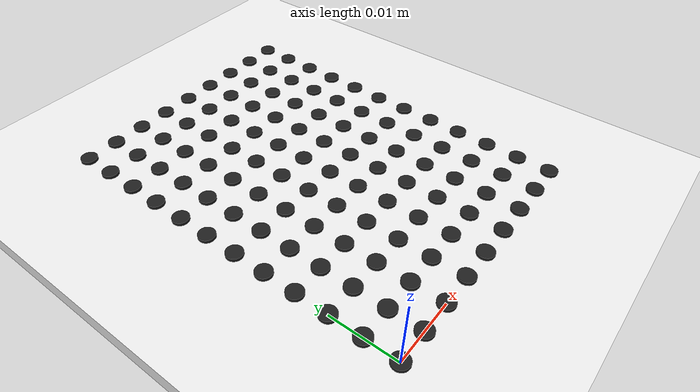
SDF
<?xml version="1.0"?>
<sdf version="1.4">
	<model name="dots_board_small">
		<pose>0 0 0 0 0 0</pose>
		<static>false</static>
		<link name="body">
			<visual name="dot_1_1">
				<pose>0 0 0.00025 0 0 0</pose>
				<geometry>
					<cylinder>
						<radius>0.00125</radius>
						<length>0.0005</length>
					</cylinder>
				</geometry>
				<material>
					<script>
						<uri>file://media/materials/scripts/gazebo.material</uri>
						<name>Gazebo/Black</name>
					</script>
				</material>
			</visual>
			<visual name="dot_1_2">
				<pose>0 0.005 0.00025 0 0 0</pose>
				<geometry>
					<cylinder>
						<radius>0.00125</radius>
						<length>0.0005</length>
					</cylinder>
				</geometry>
				<material>
					<script>
						<uri>file://media/materials/scripts/gazebo.material</uri>
						<name>Gazebo/Black</name>
					</script>
				</material>
			</visual>
			<visual name="dot_1_3">
				<pose>0 0.01 0.00025 0 0 0</pose>
				<geometry>
					<cylinder>
						<radius>0.00125</radius>
						<length>0.0005</length>
					</cylinder>
				</geometry>
				<material>
					<script>
						<uri>file://media/materials/scripts/gazebo.material</uri>
						<name>Gazebo/Black</name>
					</script>
				</material>
			</visual>
			<visual name="dot_1_4">
				<pose>0 0.015 0.00025 0 0 0</pose>
				<geometry>
					<cylinder>
						<radius>0.00125</radius>
						<length>0.0005</length>
					</cylinder>
				</geometry>
				<material>
					<script>
						<uri>file://media/materials/scripts/gazebo.material</uri>
						<name>Gazebo/Black</name>
					</script>
				</material>
			</visual>
			<visual name="dot_1_5">
				<pose>0 0.02 0.00025 0 0 0</pose>
				<geometry>
					<cylinder>
						<radius>0.00125</radius>
						<length>0.0005</length>
					</cylinder>
				</geometry>
				<material>
					<script>
						<uri>file://media/materials/scripts/gazebo.material</uri>
						<name>Gazebo/Black</name>
					</script>
				</material>
			</visual>
			<visual name="dot_1_6">
				<pose>0 0.025 0.00025 0 0 0</pose>
				<geometry>
					<cylinder>
						<radius>0.00125</radius>
						<length>0.0005</length>
					</cylinder>
				</geometry>
				<material>
					<script>
						<uri>file://media/materials/scripts/gazebo.material</uri>
						<name>Gazebo/Black</name>
					</script>
				</material>
			</visual>
			<visual name="dot_1_7">
				<pose>0 0.03 0.00025 0 0 0</pose>
				<geometry>
					<cylinder>
						<radius>0.00125</radius>
						<length>0.0005</length>
					</cylinder>
				</geometry>
				<material>
					<script>
						<uri>file://media/materials/scripts/gazebo.material</uri>
						<name>Gazebo/Black</name>
					</script>
				</material>
			</visual>
			<visual name="dot_1_8">
				<pose>0 0.035 0.00025 0 0 0</pose>
				<geometry>
					<cylinder>
						<radius>0.00125</radius>
						<length>0.0005</length>
					</cylinder>
				</geometry>
				<material>
					<script>
						<uri>file://media/materials/scripts/gazebo.material</uri>
						<name>Gazebo/Black</name>
					</script>
				</material>
			</visual>
			<visual name="dot_1_9">
				<pose>0 0.04 0.00025 0 0 0</pose>
				<geometry>
					<cylinder>
						<radius>0.00125</radius>
						<length>0.0005</length>
					</cylinder>
				</geometry>
				<material>
					<script>
						<uri>file://media/materials/scripts/gazebo.material</uri>
						<name>Gazebo/Black</name>
					</script>
				</material>
			</visual>
			<visual name="dot_1_10">
				<pose>0 0.045 0.00025 0 0 0</pose>
				<geometry>
					<cylinder>
						<radius>0.00125</radius>
						<length>0.0005</length>
					</cylinder>
				</geometry>
				<material>
					<script>
						<uri>file://media/materials/scripts/gazebo.material</uri>
						<name>Gazebo/Black</name>
					</script>
				</material>
			</visual>
			<visual name="dot_1_11">
				<pose>0 0.05 0.00025 0 0 0</pose>
				<geometry>
					<cylinder>
						<radius>0.00125</radius>
						<length>0.0005</length>
					</cylinder>
				</geometry>
				<material>
					<script>
						<uri>file://media/materials/scripts/gazebo.material</uri>
						<name>Gazebo/Black</name>
					</script>
				</material>
			</visual>
			<visual name="dot_1_12">
				<pose>0 0.055 0.00025 0 0 0</pose>
				<geometry>
					<cylinder>
						<radius>0.00125</radius>
						<length>0.0005</length>
					</cylinder>
				</geometry>
				<material>
					<script>
						<uri>file://media/materials/scripts/gazebo.material</uri>
						<name>Gazebo/Black</name>
					</script>
				</material>
			</visual>
			<visual name="dot_2_1">
				<pose>0.005 0 0.00025 0 0 0</pose>
				<geometry>
					<cylinder>
						<radius>0.00125</radius>
						<length>0.0005</length>
					</cylinder>
				</geometry>
				<material>
					<script>
						<uri>file://media/materials/scripts/gazebo.material</uri>
						<name>Gazebo/Black</name>
					</script>
				</material>
			</visual>
			<visual name="dot_2_2">
				<pose>0.005 0.005 0.00025 0 0 0</pose>
				<geometry>
					<cylinder>
						<radius>0.00125</radius>
						<length>0.0005</length>
					</cylinder>
				</geometry>
				<material>
					<script>
						<uri>file://media/materials/scripts/gazebo.material</uri>
						<name>Gazebo/Black</name>
					</script>
				</material>
			</visual>
			<visual name="dot_2_3">
				<pose>0.005 0.01 0.00025 0 0 0</pose>
				<geometry>
					<cylinder>
						<radius>0.00125</radius>
						<length>0.0005</length>
					</cylinder>
				</geometry>
				<material>
					<script>
						<uri>file://media/materials/scripts/gazebo.material</uri>
						<name>Gazebo/Black</name>
					</script>
				</material>
			</visual>
			<visual name="dot_2_4">
				<pose>0.005 0.015 0.00025 0 0 0</pose>
				<geometry>
					<cylinder>
						<radius>0.00125</radius>
						<length>0.0005</length>
					</cylinder>
				</geometry>
				<material>
					<script>
						<uri>file://media/materials/scripts/gazebo.material</uri>
						<name>Gazebo/Black</name>
					</script>
				</material>
			</visual>
			<visual name="dot_2_5">
				<pose>0.005 0.02 0.00025 0 0 0</pose>
				<geometry>
					<cylinder>
						<radius>0.00125</radius>
						<length>0.0005</length>
					</cylinder>
				</geometry>
				<material>
					<script>
						<uri>file://media/materials/scripts/gazebo.material</uri>
						<name>Gazebo/Black</name>
					</script>
				</material>
			</visual>
			<visual name="dot_2_6">
				<pose>0.005 0.025 0.00025 0 0 0</pose>
				<geometry>
					<cylinder>
						<radius>0.00125</radius>
						<length>0.0005</length>
					</cylinder>
				</geometry>
				<material>
					<script>
						<uri>file://media/materials/scripts/gazebo.material</uri>
						<name>Gazebo/Black</name>
					</script>
				</material>
			</visual>
			<visual name="dot_2_7">
				<pose>0.005 0.03 0.00025 0 0 0</pose>
				<geometry>
					<cylinder>
						<radius>0.00125</radius>
						<length>0.0005</length>
					</cylinder>
				</geometry>
				<material>
					<script>
						<uri>file://media/materials/scripts/gazebo.material</uri>
						<name>Gazebo/Black</name>
					</script>
				</material>
			</visual>
			<visual name="dot_2_8">
				<pose>0.005 0.035 0.00025 0 0 0</pose>
				<geometry>
					<cylinder>
						<radius>0.00125</radius>
						<length>0.0005</length>
					</cylinder>
				</geometry>
				<material>
					<script>
						<uri>file://media/materials/scripts/gazebo.material</uri>
						<name>Gazebo/Black</name>
					</script>
				</material>
			</visual>
			<visual name="dot_2_9">
				<pose>0.005 0.04 0.00025 0 0 0</pose>
				<geometry>
					<cylinder>
						<radius>0.00125</radius>
						<length>0.0005</length>
					</cylinder>
				</geometry>
				<material>
					<script>
						<uri>file://media/materials/scripts/gazebo.material</uri>
						<name>Gazebo/Black</name>
					</script>
				</material>
			</visual>
			<visual name="dot_2_10">
				<pose>0.005 0.045 0.00025 0 0 0</pose>
				<geometry>
					<cylinder>
						<radius>0.00125</radius>
						<length>0.0005</length>
					</cylinder>
				</geometry>
				<material>
					<script>
						<uri>file://media/materials/scripts/gazebo.material</uri>
						<name>Gazebo/Black</name>
					</script>
				</material>
			</visual>
			<visual name="dot_2_11">
				<pose>0.005 0.05 0.00025 0 0 0</pose>
				<geometry>
					<cylinder>
						<radius>0.00125</radius>
						<length>0.0005</length>
					</cylinder>
				</geometry>
				<material>
					<script>
						<uri>file://media/materials/scripts/gazebo.material</uri>
						<name>Gazebo/Black</name>
					</script>
				</material>
			</visual>
			<visual name="dot_2_12">
				<pose>0.005 0.055 0.00025 0 0 0</pose>
				<geometry>
					<cylinder>
						<radius>0.00125</radius>
						<length>0.0005</length>
					</cylinder>
				</geometry>
				<material>
					<script>
						<uri>file://media/materials/scripts/gazebo.material</uri>
						<name>Gazebo/Black</name>
					</script>
				</material>
			</visual>
			<visual name="dot_3_1">
				<pose>0.01 0 0.00025 0 0 0</pose>
				<geometry>
					<cylinder>
						<radius>0.00125</radius>
						<length>0.0005</length>
					</cylinder>
				</geometry>
				<material>
					<script>
						<uri>file://media/materials/scripts/gazebo.material</uri>
						<name>Gazebo/Black</name>
					</script>
				</material>
			</visual>
			<visual name="dot_3_2">
				<pose>0.01 0.005 0.00025 0 0 0</pose>
				<geometry>
					<cylinder>
						<radius>0.00125</radius>
						<length>0.0005</length>
					</cylinder>
				</geometry>
				<material>
					<script>
						<uri>file://media/materials/scripts/gazebo.material</uri>
						<name>Gazebo/Black</name>
					</script>
				</material>
			</visual>
			<visual name="dot_3_3">
				<pose>0.01 0.01 0.00025 0 0 0</pose>
				<geometry>
					<cylinder>
						<radius>0.00125</radius>
						<length>0.0005</length>
					</cylinder>
				</geometry>
				<material>
					<script>
						<uri>file://media/materials/scripts/gazebo.material</uri>
						<name>Gazebo/Black</name>
					</script>
				</material>
			</visual>
			<visual name="dot_3_4">
				<pose>0.01 0.015 0.00025 0 0 0</pose>
				<geometry>
					<cylinder>
						<radius>0.00125</radius>
						<length>0.0005</length>
					</cylinder>
				</geometry>
				<material>
					<script>
						<uri>file://media/materials/scripts/gazebo.material</uri>
						<name>Gazebo/Black</name>
					</script>
				</material>
			</visual>
			<visual name="dot_3_5">
				<pose>0.01 0.02 0.00025 0 0 0</pose>
				<geometry>
					<cylinder>
						<radius>0.00125</radius>
						<length>0.0005</length>
					</cylinder>
				</geometry>
				<material>
					<script>
						<uri>file://media/materials/scripts/gazebo.material</uri>
						<name>Gazebo/Black</name>
					</script>
				</material>
			</visual>
			<visual name="dot_3_6">
				<pose>0.01 0.025 0.00025 0 0 0</pose>
				<geometry>
					<cylinder>
						<radius>0.00125</radius>
						<length>0.0005</length>
					</cylinder>
				</geometry>
				<material>
					<script>
						<uri>file://media/materials/scripts/gazebo.material</uri>
						<name>Gazebo/Black</name>
					</script>
				</material>
			</visual>
			<visual name="dot_3_7">
				<pose>0.01 0.03 0.00025 0 0 0</pose>
				<geometry>
					<cylinder>
						<radius>0.00125</radius>
						<length>0.0005</length>
					</cylinder>
				</geometry>
				<material>
					<script>
						<uri>file://media/materials/scripts/gazebo.material</uri>
						<name>Gazebo/Black</name>
					</script>
				</material>
			</visual>
			<visual name="dot_3_8">
				<pose>0.01 0.035 0.00025 0 0 0</pose>
				<geometry>
					<cylinder>
						<radius>0.00125</radius>
						<length>0.0005</length>
					</cylinder>
				</geometry>
				<material>
					<script>
						<uri>file://media/materials/scripts/gazebo.material</uri>
						<name>Gazebo/Black</name>
					</script>
				</material>
			</visual>
			<visual name="dot_3_9">
				<pose>0.01 0.04 0.00025 0 0 0</pose>
				<geometry>
					<cylinder>
						<radius>0.00125</radius>
						<length>0.0005</length>
					</cylinder>
				</geometry>
				<material>
					<script>
						<uri>file://media/materials/scripts/gazebo.material</uri>
						<name>Gazebo/Black</name>
					</script>
				</material>
			</visual>
			<visual name="dot_3_10">
				<pose>0.01 0.045 0.00025 0 0 0</pose>
				<geometry>
					<cylinder>
						<radius>0.00125</radius>
						<length>0.0005</length>
					</cylinder>
				</geometry>
				<material>
					<script>
						<uri>file://media/materials/scripts/gazebo.material</uri>
						<name>Gazebo/Black</name>
					</script>
				</material>
			</visual>
			<visual name="dot_3_11">
				<pose>0.01 0.05 0.00025 0 0 0</pose>
				<geometry>
					<cylinder>
						<radius>0.00125</radius>
						<length>0.0005</length>
					</cylinder>
				</geometry>
				<material>
					<script>
						<uri>file://media/materials/scripts/gazebo.material</uri>
						<name>Gazebo/Black</name>
					</script>
				</material>
			</visual>
			<visual name="dot_3_12">
				<pose>0.01 0.055 0.00025 0 0 0</pose>
				<geometry>
					<cylinder>
						<radius>0.00125</radius>
						<length>0.0005</length>
					</cylinder>
				</geometry>
				<material>
					<script>
						<uri>file://media/materials/scripts/gazebo.material</uri>
						<name>Gazebo/Black</name>
					</script>
				</material>
			</visual>
			<visual name="dot_4_1">
				<pose>0.015 0 0.00025 0 0 0</pose>
				<geometry>
					<cylinder>
						<radius>0.00125</radius>
						<length>0.0005</length>
					</cylinder>
				</geometry>
				<material>
					<script>
						<uri>file://media/materials/scripts/gazebo.material</uri>
						<name>Gazebo/Black</name>
					</script>
				</material>
			</visual>
			<visual name="dot_4_2">
				<pose>0.015 0.005 0.00025 0 0 0</pose>
				<geometry>
					<cylinder>
						<radius>0.00125</radius>
						<length>0.0005</length>
					</cylinder>
				</geometry>
				<material>
					<script>
						<uri>file://media/materials/scripts/gazebo.material</uri>
						<name>Gazebo/Black</name>
					</script>
				</material>
			</visual>
			<visual name="dot_4_3">
				<pose>0.015 0.01 0.00025 0 0 0</pose>
				<geometry>
					<cylinder>
						<radius>0.00125</radius>
						<length>0.0005</length>
					</cylinder>
				</geometry>
				<material>
					<script>
						<uri>file://media/materials/scripts/gazebo.material</uri>
						<name>Gazebo/Black</name>
					</script>
				</material>
			</visual>
			<visual name="dot_4_4">
				<pose>0.015 0.015 0.00025 0 0 0</pose>
				<geometry>
					<cylinder>
						<radius>0.00125</radius>
						<length>0.0005</length>
					</cylinder>
				</geometry>
				<material>
					<script>
						<uri>file://media/materials/scripts/gazebo.material</uri>
						<name>Gazebo/Black</name>
					</script>
				</material>
			</visual>
			<visual name="dot_4_5">
				<pose>0.015 0.02 0.00025 0 0 0</pose>
				<geometry>
					<cylinder>
						<radius>0.00125</radius>
						<length>0.0005</length>
					</cylinder>
				</geometry>
				<material>
					<script>
						<uri>file://media/materials/scripts/gazebo.material</uri>
						<name>Gazebo/Black</name>
					</script>
				</material>
			</visual>
			<visual name="dot_4_6">
				<pose>0.015 0.025 0.00025 0 0 0</pose>
				<geometry>
					<cylinder>
						<radius>0.00125</radius>
						<length>0.0005</length>
					</cylinder>
				</geometry>
				<material>
					<script>
						<uri>file://media/materials/scripts/gazebo.material</uri>
						<name>Gazebo/Black</name>
					</script>
				</material>
			</visual>
			<visual name="dot_4_7">
				<pose>0.015 0.03 0.00025 0 0 0</pose>
				<geometry>
					<cylinder>
						<radius>0.00125</radius>
						<length>0.0005</length>
					</cylinder>
				</geometry>
				<material>
					<script>
						<uri>file://media/materials/scripts/gazebo.material</uri>
						<name>Gazebo/Black</name>
					</script>
				</material>
			</visual>
			<visual name="dot_4_8">
				<pose>0.015 0.035 0.00025 0 0 0</pose>
				<geometry>
					<cylinder>
						<radius>0.00125</radius>
						<length>0.0005</length>
					</cylinder>
				</geometry>
				<material>
					<script>
						<uri>file://media/materials/scripts/gazebo.material</uri>
						<name>Gazebo/Black</name>
					</script>
				</material>
			</visual>
			<visual name="dot_4_9">
				<pose>0.015 0.04 0.00025 0 0 0</pose>
				<geometry>
					<cylinder>
						<radius>0.00125</radius>
						<length>0.0005</length>
					</cylinder>
				</geometry>
				<material>
					<script>
						<uri>file://media/materials/scripts/gazebo.material</uri>
						<name>Gazebo/Black</name>
					</script>
				</material>
			</visual>
			<visual name="dot_4_10">
				<pose>0.015 0.045 0.00025 0 0 0</pose>
				<geometry>
					<cylinder>
						<radius>0.00125</radius>
						<length>0.0005</length>
					</cylinder>
				</geometry>
				<material>
					<script>
						<uri>file://media/materials/scripts/gazebo.material</uri>
						<name>Gazebo/Black</name>
					</script>
				</material>
			</visual>
			<visual name="dot_4_11">
				<pose>0.015 0.05 0.00025 0 0 0</pose>
				<geometry>
					<cylinder>
						<radius>0.00125</radius>
						<length>0.0005</length>
					</cylinder>
				</geometry>
				<material>
					<script>
						<uri>file://media/materials/scripts/gazebo.material</uri>
						<name>Gazebo/Black</name>
					</script>
				</material>
			</visual>
			<visual name="dot_4_12">
				<pose>0.015 0.055 0.00025 0 0 0</pose>
				<geometry>
					<cylinder>
						<radius>0.00125</radius>
						<length>0.0005</length>
					</cylinder>
				</geometry>
				<material>
					<script>
						<uri>file://media/materials/scripts/gazebo.material</uri>
						<name>Gazebo/Black</name>
					</script>
				</material>
			</visual>
			<visual name="dot_5_1">
				<pose>0.02 0 0.00025 0 0 0</pose>
				<geometry>
					<cylinder>
						<radius>0.00125</radius>
						<length>0.0005</length>
					</cylinder>
				</geometry>
				<material>
					<script>
						<uri>file://media/materials/scripts/gazebo.material</uri>
						<name>Gazebo/Black</name>
					</script>
				</material>
			</visual>
			<visual name="dot_5_2">
				<pose>0.02 0.005 0.00025 0 0 0</pose>
				<geometry>
					<cylinder>
						<radius>0.00125</radius>
						<length>0.0005</length>
					</cylinder>
				</geometry>
				<material>
					<script>
						<uri>file://media/materials/scripts/gazebo.material</uri>
						<name>Gazebo/Black</name>
					</script>
				</material>
			</visual>
			<visual name="dot_5_3">
				<pose>0.02 0.01 0.00025 0 0 0</pose>
				<geometry>
					<cylinder>
						<radius>0.00125</radius>
						<length>0.0005</length>
					</cylinder>
				</geometry>
				<material>
					<script>
						<uri>file://media/materials/scripts/gazebo.material</uri>
						<name>Gazebo/Black</name>
					</script>
				</material>
			</visual>
			<visual name="dot_5_4">
				<pose>0.02 0.015 0.00025 0 0 0</pose>
				<geometry>
					<cylinder>
						<radius>0.00125</radius>
						<length>0.0005</length>
					</cylinder>
				</geometry>
				<material>
					<script>
						<uri>file://media/materials/scripts/gazebo.material</uri>
						<name>Gazebo/Black</name>
					</script>
				</material>
			</visual>
			<visual name="dot_5_5">
				<pose>0.02 0.02 0.00025 0 0 0</pose>
				<geometry>
					<cylinder>
						<radius>0.00125</radius>
						<length>0.0005</length>
					</cylinder>
				</geometry>
				<material>
					<script>
						<uri>file://media/materials/scripts/gazebo.material</uri>
						<name>Gazebo/Black</name>
					</script>
				</material>
			</visual>
			<visual name="dot_5_6">
				<pose>0.02 0.025 0.00025 0 0 0</pose>
				<geometry>
					<cylinder>
						<radius>0.00125</radius>
						<length>0.0005</length>
					</cylinder>
				</geometry>
				<material>
					<script>
						<uri>file://media/materials/scripts/gazebo.material</uri>
						<name>Gazebo/Black</name>
					</script>
				</material>
			</visual>
			<visual name="dot_5_7">
				<pose>0.02 0.03 0.00025 0 0 0</pose>
				<geometry>
					<cylinder>
						<radius>0.00125</radius>
						<length>0.0005</length>
					</cylinder>
				</geometry>
				<material>
					<script>
						<uri>file://media/materials/scripts/gazebo.material</uri>
						<name>Gazebo/Black</name>
					</script>
				</material>
			</visual>
			<visual name="dot_5_8">
				<pose>0.02 0.035 0.00025 0 0 0</pose>
				<geometry>
					<cylinder>
						<radius>0.00125</radius>
						<length>0.0005</length>
					</cylinder>
				</geometry>
				<material>
					<script>
						<uri>file://media/materials/scripts/gazebo.material</uri>
						<name>Gazebo/Black</name>
					</script>
				</material>
			</visual>
			<visual name="dot_5_9">
				<pose>0.02 0.04 0.00025 0 0 0</pose>
				<geometry>
					<cylinder>
						<radius>0.00125</radius>
						<length>0.0005</length>
					</cylinder>
				</geometry>
				<material>
					<script>
						<uri>file://media/materials/scripts/gazebo.material</uri>
						<name>Gazebo/Black</name>
					</script>
				</material>
			</visual>
			<visual name="dot_5_10">
				<pose>0.02 0.045 0.00025 0 0 0</pose>
				<geometry>
					<cylinder>
						<radius>0.00125</radius>
						<length>0.0005</length>
					</cylinder>
				</geometry>
				<material>
					<script>
						<uri>file://media/materials/scripts/gazebo.material</uri>
						<name>Gazebo/Black</name>
					</script>
				</material>
			</visual>
			<visual name="dot_5_11">
				<pose>0.02 0.05 0.00025 0 0 0</pose>
				<geometry>
					<cylinder>
						<radius>0.00125</radius>
						<length>0.0005</length>
					</cylinder>
				</geometry>
				<material>
					<script>
						<uri>file://media/materials/scripts/gazebo.material</uri>
						<name>Gazebo/Black</name>
					</script>
				</material>
			</visual>
			<visual name="dot_5_12">
				<pose>0.02 0.055 0.00025 0 0 0</pose>
				<geometry>
					<cylinder>
						<radius>0.00125</radius>
						<length>0.0005</length>
					</cylinder>
				</geometry>
				<material>
					<script>
						<uri>file://media/materials/scripts/gazebo.material</uri>
						<name>Gazebo/Black</name>
					</script>
				</material>
			</visual>
			<visual name="dot_6_1">
				<pose>0.025 0 0.00025 0 0 0</pose>
				<geometry>
					<cylinder>
						<radius>0.00125</radius>
						<length>0.0005</length>
					</cylinder>
				</geometry>
				<material>
					<script>
						<uri>file://media/materials/scripts/gazebo.material</uri>
						<name>Gazebo/Black</name>
					</script>
				</material>
			</visual>
			<visual name="dot_6_2">
				<pose>0.025 0.005 0.00025 0 0 0</pose>
				<geometry>
					<cylinder>
						<radius>0.00125</radius>
						<length>0.0005</length>
					</cylinder>
				</geometry>
				<material>
					<script>
						<uri>file://media/materials/scripts/gazebo.material</uri>
						<name>Gazebo/Black</name>
					</script>
				</material>
			</visual>
			<visual name="dot_6_3">
				<pose>0.025 0.01 0.00025 0 0 0</pose>
				<geometry>
					<cylinder>
						<radius>0.00125</radius>
						<length>0.0005</length>
					</cylinder>
				</geometry>
				<material>
					<script>
						<uri>file://media/materials/scripts/gazebo.material</uri>
						<name>Gazebo/Black</name>
					</script>
				</material>
			</visual>
			<visual name="dot_6_4">
				<pose>0.025 0.015 0.00025 0 0 0</pose>
				<geometry>
					<cylinder>
						<radius>0.00125</radius>
						<length>0.0005</length>
					</cylinder>
				</geometry>
				<material>
					<script>
						<uri>file://media/materials/scripts/gazebo.material</uri>
						<name>Gazebo/Black</name>
					</script>
				</material>
			</visual>
			<visual name="dot_6_5">
				<pose>0.025 0.02 0.00025 0 0 0</pose>
				<geometry>
					<cylinder>
						<radius>0.00125</radius>
						<length>0.0005</length>
					</cylinder>
				</geometry>
				<material>
					<script>
						<uri>file://media/materials/scripts/gazebo.material</uri>
						<name>Gazebo/Black</name>
					</script>
				</material>
			</visual>
			<visual name="dot_6_6">
				<pose>0.025 0.025 0.00025 0 0 0</pose>
				<geometry>
					<cylinder>
						<radius>0.00125</radius>
						<length>0.0005</length>
					</cylinder>
				</geometry>
				<material>
					<script>
						<uri>file://media/materials/scripts/gazebo.material</uri>
						<name>Gazebo/Black</name>
					</script>
				</material>
			</visual>
			<visual name="dot_6_7">
				<pose>0.025 0.03 0.00025 0 0 0</pose>
				<geometry>
					<cylinder>
						<radius>0.00125</radius>
						<length>0.0005</length>
					</cylinder>
				</geometry>
				<material>
					<script>
						<uri>file://media/materials/scripts/gazebo.material</uri>
						<name>Gazebo/Black</name>
					</script>
				</material>
			</visual>
			<visual name="dot_6_8">
				<pose>0.025 0.035 0.00025 0 0 0</pose>
				<geometry>
					<cylinder>
						<radius>0.00125</radius>
						<length>0.0005</length>
					</cylinder>
				</geometry>
				<material>
					<script>
						<uri>file://media/materials/scripts/gazebo.material</uri>
						<name>Gazebo/Black</name>
					</script>
				</material>
			</visual>
			<visual name="dot_6_9">
				<pose>0.025 0.04 0.00025 0 0 0</pose>
				<geometry>
					<cylinder>
						<radius>0.00125</radius>
						<length>0.0005</length>
					</cylinder>
				</geometry>
				<material>
					<script>
						<uri>file://media/materials/scripts/gazebo.material</uri>
						<name>Gazebo/Black</name>
					</script>
				</material>
			</visual>
			<visual name="dot_6_10">
				<pose>0.025 0.045 0.00025 0 0 0</pose>
				<geometry>
					<cylinder>
						<radius>0.00125</radius>
						<length>0.0005</length>
					</cylinder>
				</geometry>
				<material>
					<script>
						<uri>file://media/materials/scripts/gazebo.material</uri>
						<name>Gazebo/Black</name>
					</script>
				</material>
			</visual>
			<visual name="dot_6_11">
				<pose>0.025 0.05 0.00025 0 0 0</pose>
				<geometry>
					<cylinder>
						<radius>0.00125</radius>
						<length>0.0005</length>
					</cylinder>
				</geometry>
				<material>
					<script>
						<uri>file://media/materials/scripts/gazebo.material</uri>
						<name>Gazebo/Black</name>
					</script>
				</material>
			</visual>
			<visual name="dot_6_12">
				<pose>0.025 0.055 0.00025 0 0 0</pose>
				<geometry>
					<cylinder>
						<radius>0.00125</radius>
						<length>0.0005</length>
					</cylinder>
				</geometry>
				<material>
					<script>
						<uri>file://media/materials/scripts/gazebo.material</uri>
						<name>Gazebo/Black</name>
					</script>
				</material>
			</visual>
			<visual name="dot_7_1">
				<pose>0.03 0 0.00025 0 0 0</pose>
				<geometry>
					<cylinder>
						<radius>0.00125</radius>
						<length>0.0005</length>
					</cylinder>
				</geometry>
				<material>
					<script>
						<uri>file://media/materials/scripts/gazebo.material</uri>
						<name>Gazebo/Black</name>
					</script>
				</material>
			</visual>
			<visual name="dot_7_2">
				<pose>0.03 0.005 0.00025 0 0 0</pose>
				<geometry>
					<cylinder>
						<radius>0.00125</radius>
						<length>0.0005</length>
					</cylinder>
				</geometry>
				<material>
					<script>
						<uri>file://media/materials/scripts/gazebo.material</uri>
						<name>Gazebo/Black</name>
					</script>
				</material>
			</visual>
			<visual name="dot_7_3">
				<pose>0.03 0.01 0.00025 0 0 0</pose>
				<geometry>
					<cylinder>
						<radius>0.00125</radius>
						<length>0.0005</length>
					</cylinder>
				</geometry>
				<material>
					<script>
						<uri>file://media/materials/scripts/gazebo.material</uri>
						<name>Gazebo/Black</name>
					</script>
				</material>
			</visual>
			<visual name="dot_7_4">
				<pose>0.03 0.015 0.00025 0 0 0</pose>
				<geometry>
					<cylinder>
						<radius>0.00125</radius>
						<length>0.0005</length>
					</cylinder>
				</geometry>
				<material>
					<script>
						<uri>file://media/materials/scripts/gazebo.material</uri>
						<name>Gazebo/Black</name>
					</script>
				</material>
			</visual>
			<visual name="dot_7_5">
				<pose>0.03 0.02 0.00025 0 0 0</pose>
				<geometry>
					<cylinder>
						<radius>0.00125</radius>
						<length>0.0005</length>
					</cylinder>
				</geometry>
				<material>
					<script>
						<uri>file://media/materials/scripts/gazebo.material</uri>
						<name>Gazebo/Black</name>
					</script>
				</material>
			</visual>
			<visual name="dot_7_6">
				<pose>0.03 0.025 0.00025 0 0 0</pose>
				<geometry>
					<cylinder>
						<radius>0.00125</radius>
						<length>0.0005</length>
					</cylinder>
				</geometry>
				<material>
					<script>
						<uri>file://media/materials/scripts/gazebo.material</uri>
						<name>Gazebo/Black</name>
					</script>
				</material>
			</visual>
			<visual name="dot_7_7">
				<pose>0.03 0.03 0.00025 0 0 0</pose>
				<geometry>
					<cylinder>
						<radius>0.00125</radius>
						<length>0.0005</length>
					</cylinder>
				</geometry>
				<material>
					<script>
						<uri>file://media/materials/scripts/gazebo.material</uri>
						<name>Gazebo/Black</name>
					</script>
				</material>
			</visual>
			<visual name="dot_7_8">
				<pose>0.03 0.035 0.00025 0 0 0</pose>
				<geometry>
					<cylinder>
						<radius>0.00125</radius>
						<length>0.0005</length>
					</cylinder>
				</geometry>
				<material>
					<script>
						<uri>file://media/materials/scripts/gazebo.material</uri>
						<name>Gazebo/Black</name>
					</script>
				</material>
			</visual>
			<visual name="dot_7_9">
				<pose>0.03 0.04 0.00025 0 0 0</pose>
				<geometry>
					<cylinder>
						<radius>0.00125</radius>
						<length>0.0005</length>
					</cylinder>
				</geometry>
				<material>
					<script>
						<uri>file://media/materials/scripts/gazebo.material</uri>
						<name>Gazebo/Black</name>
					</script>
				</material>
			</visual>
			<visual name="dot_7_10">
				<pose>0.03 0.045 0.00025 0 0 0</pose>
				<geometry>
					<cylinder>
						<radius>0.00125</radius>
						<length>0.0005</length>
					</cylinder>
				</geometry>
				<material>
					<script>
						<uri>file://media/materials/scripts/gazebo.material</uri>
						<name>Gazebo/Black</name>
					</script>
				</material>
			</visual>
			<visual name="dot_7_11">
				<pose>0.03 0.05 0.00025 0 0 0</pose>
				<geometry>
					<cylinder>
						<radius>0.00125</radius>
						<length>0.0005</length>
					</cylinder>
				</geometry>
				<material>
					<script>
						<uri>file://media/materials/scripts/gazebo.material</uri>
						<name>Gazebo/Black</name>
					</script>
				</material>
			</visual>
			<visual name="dot_7_12">
				<pose>0.03 0.055 0.00025 0 0 0</pose>
				<geometry>
					<cylinder>
						<radius>0.00125</radius>
						<length>0.0005</length>
					</cylinder>
				</geometry>
				<material>
					<script>
						<uri>file://media/materials/scripts/gazebo.material</uri>
						<name>Gazebo/Black</name>
					</script>
				</material>
			</visual>
			<visual name="dot_8_1">
				<pose>0.035 0 0.00025 0 0 0</pose>
				<geometry>
					<cylinder>
						<radius>0.00125</radius>
						<length>0.0005</length>
					</cylinder>
				</geometry>
				<material>
					<script>
						<uri>file://media/materials/scripts/gazebo.material</uri>
						<name>Gazebo/Black</name>
					</script>
				</material>
			</visual>
			<visual name="dot_8_2">
				<pose>0.035 0.005 0.00025 0 0 0</pose>
				<geometry>
					<cylinder>
						<radius>0.00125</radius>
						<length>0.0005</length>
					</cylinder>
				</geometry>
				<material>
					<script>
						<uri>file://media/materials/scripts/gazebo.material</uri>
						<name>Gazebo/Black</name>
					</script>
				</material>
			</visual>
			<visual name="dot_8_3">
				<pose>0.035 0.01 0.00025 0 0 0</pose>
				<geometry>
					<cylinder>
						<radius>0.00125</radius>
						<length>0.0005</length>
					</cylinder>
				</geometry>
				<material>
					<script>
						<uri>file://media/materials/scripts/gazebo.material</uri>
						<name>Gazebo/Black</name>
					</script>
				</material>
			</visual>
			<visual name="dot_8_4">
				<pose>0.035 0.015 0.00025 0 0 0</pose>
				<geometry>
					<cylinder>
						<radius>0.00125</radius>
						<length>0.0005</length>
					</cylinder>
				</geometry>
				<material>
					<script>
						<uri>file://media/materials/scripts/gazebo.material</uri>
						<name>Gazebo/Black</name>
					</script>
				</material>
			</visual>
			<visual name="dot_8_5">
				<pose>0.035 0.02 0.00025 0 0 0</pose>
				<geometry>
					<cylinder>
						<radius>0.00125</radius>
						<length>0.0005</length>
					</cylinder>
				</geometry>
				<material>
					<script>
						<uri>file://media/materials/scripts/gazebo.material</uri>
						<name>Gazebo/Black</name>
					</script>
				</material>
			</visual>
			<visual name="dot_8_6">
				<pose>0.035 0.025 0.00025 0 0 0</pose>
				<geometry>
					<cylinder>
						<radius>0.00125</radius>
						<length>0.0005</length>
					</cylinder>
				</geometry>
				<material>
					<script>
						<uri>file://media/materials/scripts/gazebo.material</uri>
						<name>Gazebo/Black</name>
					</script>
				</material>
			</visual>
			<visual name="dot_8_7">
				<pose>0.035 0.03 0.00025 0 0 0</pose>
				<geometry>
					<cylinder>
						<radius>0.00125</radius>
						<length>0.0005</length>
					</cylinder>
				</geometry>
				<material>
					<script>
						<uri>file://media/materials/scripts/gazebo.material</uri>
						<name>Gazebo/Black</name>
					</script>
				</material>
			</visual>
			<visual name="dot_8_8">
				<pose>0.035 0.035 0.00025 0 0 0</pose>
				<geometry>
					<cylinder>
						<radius>0.00125</radius>
						<length>0.0005</length>
					</cylinder>
				</geometry>
				<material>
					<script>
						<uri>file://media/materials/scripts/gazebo.material</uri>
						<name>Gazebo/Black</name>
					</script>
				</material>
			</visual>
			<visual name="dot_8_9">
				<pose>0.035 0.04 0.00025 0 0 0</pose>
				<geometry>
					<cylinder>
						<radius>0.00125</radius>
						<length>0.0005</length>
					</cylinder>
				</geometry>
				<material>
					<script>
						<uri>file://media/materials/scripts/gazebo.material</uri>
						<name>Gazebo/Black</name>
					</script>
				</material>
			</visual>
			<visual name="dot_8_10">
				<pose>0.035 0.045 0.00025 0 0 0</pose>
				<geometry>
					<cylinder>
						<radius>0.00125</radius>
						<length>0.0005</length>
					</cylinder>
				</geometry>
				<material>
					<script>
						<uri>file://media/materials/scripts/gazebo.material</uri>
						<name>Gazebo/Black</name>
					</script>
				</material>
			</visual>
			<visual name="dot_8_11">
				<pose>0.035 0.05 0.00025 0 0 0</pose>
				<geometry>
					<cylinder>
						<radius>0.00125</radius>
						<length>0.0005</length>
					</cylinder>
				</geometry>
				<material>
					<script>
						<uri>file://media/materials/scripts/gazebo.material</uri>
						<name>Gazebo/Black</name>
					</script>
				</material>
			</visual>
			<visual name="dot_8_12">
				<pose>0.035 0.055 0.00025 0 0 0</pose>
				<geometry>
					<cylinder>
						<radius>0.00125</radius>
						<length>0.0005</length>
					</cylinder>
				</geometry>
				<material>
					<script>
						<uri>file://media/materials/scripts/gazebo.material</uri>
						<name>Gazebo/Black</name>
					</script>
				</material>
			</visual>
			<visual name="dot_9_1">
				<pose>0.04 0 0.00025 0 0 0</pose>
				<geometry>
					<cylinder>
						<radius>0.00125</radius>
						<length>0.0005</length>
					</cylinder>
				</geometry>
				<material>
					<script>
						<uri>file://media/materials/scripts/gazebo.material</uri>
						<name>Gazebo/Black</name>
					</script>
				</material>
			</visual>
			<visual name="dot_9_2">
				<pose>0.04 0.005 0.00025 0 0 0</pose>
				<geometry>
					<cylinder>
						<radius>0.00125</radius>
						<length>0.0005</length>
					</cylinder>
				</geometry>
				<material>
					<script>
						<uri>file://media/materials/scripts/gazebo.material</uri>
						<name>Gazebo/Black</name>
					</script>
				</material>
			</visual>
			<visual name="dot_9_3">
				<pose>0.04 0.01 0.00025 0 0 0</pose>
				<geometry>
					<cylinder>
						<radius>0.00125</radius>
						<length>0.0005</length>
					</cylinder>
				</geometry>
				<material>
					<script>
						<uri>file://media/materials/scripts/gazebo.material</uri>
						<name>Gazebo/Black</name>
					</script>
				</material>
			</visual>
			<visual name="dot_9_4">
				<pose>0.04 0.015 0.00025 0 0 0</pose>
				<geometry>
					<cylinder>
						<radius>0.00125</radius>
						<length>0.0005</length>
					</cylinder>
				</geometry>
				<material>
					<script>
						<uri>file://media/materials/scripts/gazebo.material</uri>
						<name>Gazebo/Black</name>
					</script>
				</material>
			</visual>
			<visual name="dot_9_5">
				<pose>0.04 0.02 0.00025 0 0 0</pose>
				<geometry>
					<cylinder>
						<radius>0.00125</radius>
						<length>0.0005</length>
					</cylinder>
				</geometry>
				<material>
					<script>
						<uri>file://media/materials/scripts/gazebo.material</uri>
						<name>Gazebo/Black</name>
					</script>
				</material>
			</visual>
			<visual name="dot_9_6">
				<pose>0.04 0.025 0.00025 0 0 0</pose>
				<geometry>
					<cylinder>
						<radius>0.00125</radius>
						<length>0.0005</length>
					</cylinder>
				</geometry>
				<material>
					<script>
						<uri>file://media/materials/scripts/gazebo.material</uri>
						<name>Gazebo/Black</name>
					</script>
				</material>
			</visual>
			<visual name="dot_9_7">
				<pose>0.04 0.03 0.00025 0 0 0</pose>
				<geometry>
					<cylinder>
						<radius>0.00125</radius>
						<length>0.0005</length>
					</cylinder>
				</geometry>
				<material>
					<script>
						<uri>file://media/materials/scripts/gazebo.material</uri>
						<name>Gazebo/Black</name>
					</script>
				</material>
			</visual>
			<visual name="dot_9_8">
				<pose>0.04 0.035 0.00025 0 0 0</pose>
				<geometry>
					<cylinder>
						<radius>0.00125</radius>
						<length>0.0005</length>
					</cylinder>
				</geometry>
				<material>
					<script>
						<uri>file://media/materials/scripts/gazebo.material</uri>
						<name>Gazebo/Black</name>
					</script>
				</material>
			</visual>
			<visual name="dot_9_9">
				<pose>0.04 0.04 0.00025 0 0 0</pose>
				<geometry>
					<cylinder>
						<radius>0.00125</radius>
						<length>0.0005</length>
					</cylinder>
				</geometry>
				<material>
					<script>
						<uri>file://media/materials/scripts/gazebo.material</uri>
						<name>Gazebo/Black</name>
					</script>
				</material>
			</visual>
			<visual name="dot_9_10">
				<pose>0.04 0.045 0.00025 0 0 0</pose>
				<geometry>
					<cylinder>
						<radius>0.00125</radius>
						<length>0.0005</length>
					</cylinder>
				</geometry>
				<material>
					<script>
						<uri>file://media/materials/scripts/gazebo.material</uri>
						<name>Gazebo/Black</name>
					</script>
				</material>
			</visual>
			<visual name="dot_9_11">
				<pose>0.04 0.05 0.00025 0 0 0</pose>
				<geometry>
					<cylinder>
						<radius>0.00125</radius>
						<length>0.0005</length>
					</cylinder>
				</geometry>
				<material>
					<script>
						<uri>file://media/materials/scripts/gazebo.material</uri>
						<name>Gazebo/Black</name>
					</script>
				</material>
			</visual>
			<visual name="dot_9_12">
				<pose>0.04 0.055 0.00025 0 0 0</pose>
				<geometry>
					<cylinder>
						<radius>0.00125</radius>
						<length>0.0005</length>
					</cylinder>
				</geometry>
				<material>
					<script>
						<uri>file://media/materials/scripts/gazebo.material</uri>
						<name>Gazebo/Black</name>
					</script>
				</material>
			</visual>

			<visual name="white_bkg">
				<pose>0 0 -0.00125 0 0 0</pose>
				<geometry>
					<box>
						<size>0.25 0.25 0.0025</size>
					</box>
				</geometry>
				<material>
					<script>
						<uri>file://media/materials/scripts/gazebo.material</uri>
						<name>Gazebo/White</name>
					</script>
				</material>
			</visual>
		</link>
	  </model>
</sdf>
